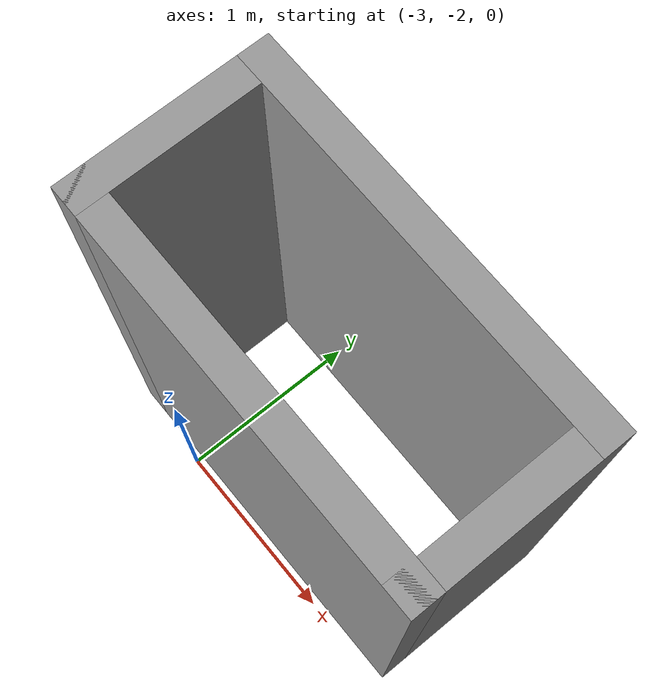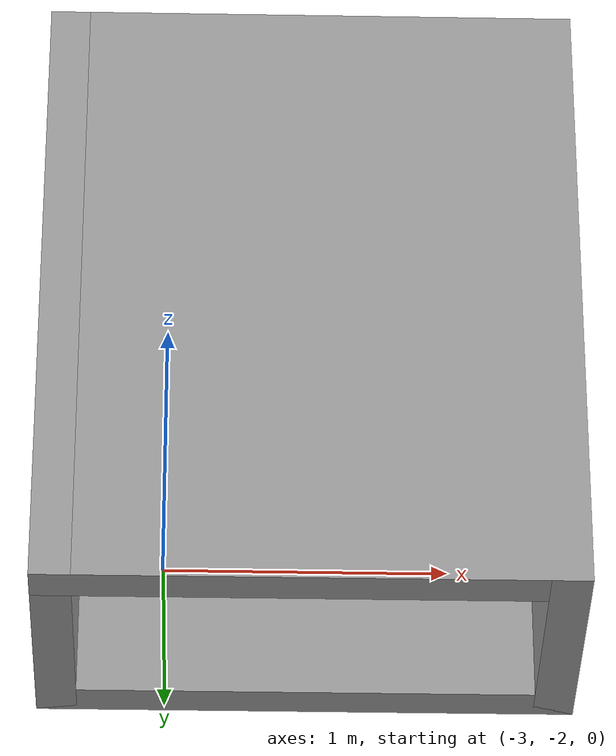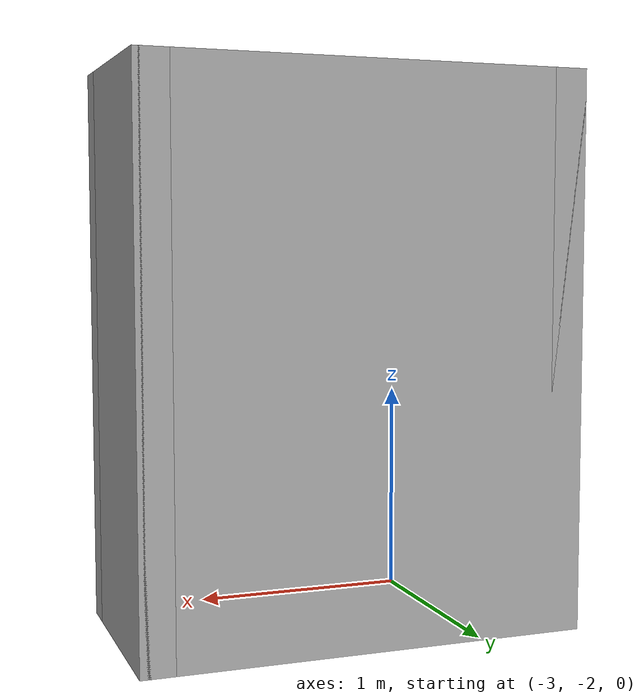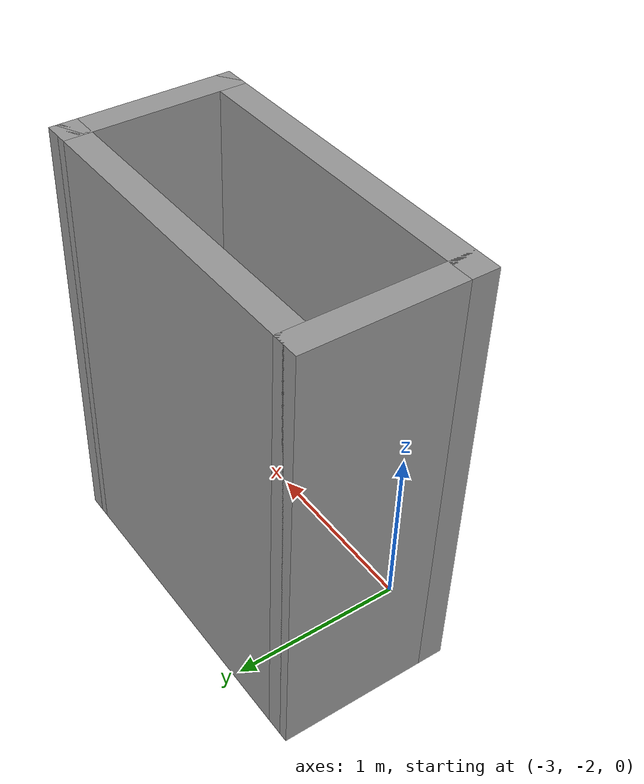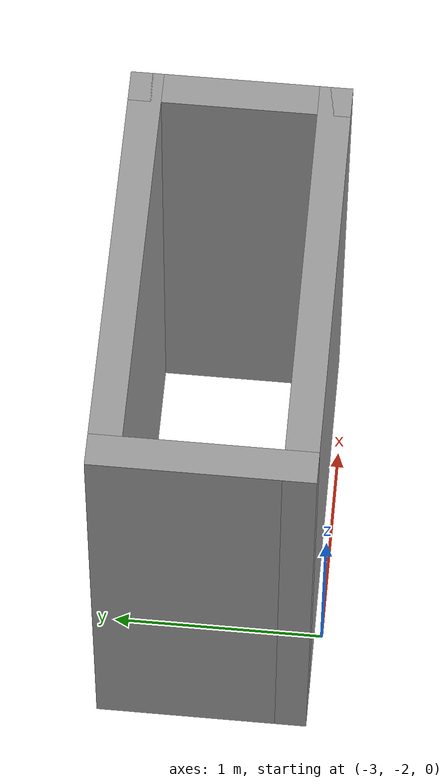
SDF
<?xml version='1.0'?>
<sdf version='1.7'>
  <model name='test'>
    <pose>-1.73833 -0.981114 0 0 -0 0</pose>
    <link name='Wall_2'>
      <collision name='Wall_2_Collision'>
        <geometry>
          <box>
            <size>2 0.15 2.5</size>
          </box>
        </geometry>
        <pose>0 0 1.25 0 -0 0</pose>
      </collision>
      <visual name='Wall_2_Visual'>
        <pose>0 0 1.25 0 -0 0</pose>
        <geometry>
          <box>
            <size>2 0.15 2.5</size>
          </box>
        </geometry>
        <material>
          <script>
            <uri>file://media/materials/scripts/gazebo.material</uri>
            <name>Gazebo/Grey</name>
          </script>
          <ambient>1 1 1 1</ambient>
        </material>
        <meta>
          <layer>0</layer>
        </meta>
      </visual>
      <pose>-0.73833 -0.056114 0 0 -0 0</pose>
    </link>
    <link name='Wall_3'>
      <collision name='Wall_3_Collision'>
        <geometry>
          <box>
            <size>1 0.15 2.5</size>
          </box>
        </geometry>
        <pose>0 0 1.25 0 -0 0</pose>
      </collision>
      <visual name='Wall_3_Visual'>
        <pose>0 0 1.25 0 -0 0</pose>
        <geometry>
          <box>
            <size>1 0.15 2.5</size>
          </box>
        </geometry>
        <material>
          <script>
            <uri>file://media/materials/scripts/gazebo.material</uri>
            <name>Gazebo/Grey</name>
          </script>
          <ambient>1 1 1 1</ambient>
        </material>
        <meta>
          <layer>0</layer>
        </meta>
      </visual>
      <pose>0.18667 -0.481114 0 0 -0 -1.5708</pose>
    </link>
    <link name='Wall_4'>
      <collision name='Wall_4_Collision'>
        <geometry>
          <box>
            <size>2 0.15 2.5</size>
          </box>
        </geometry>
        <pose>0 0 1.25 0 -0 0</pose>
      </collision>
      <visual name='Wall_4_Visual'>
        <pose>0 0 1.25 0 -0 0</pose>
        <geometry>
          <box>
            <size>2 0.15 2.5</size>
          </box>
        </geometry>
        <material>
          <script>
            <uri>file://media/materials/scripts/gazebo.material</uri>
            <name>Gazebo/Grey</name>
          </script>
          <ambient>1 1 1 1</ambient>
        </material>
        <meta>
          <layer>0</layer>
        </meta>
      </visual>
      <pose>-0.73833 -0.906114 0 0 -0 3.14159</pose>
    </link>
    <link name='Wall_5'>
      <collision name='Wall_5_Collision'>
        <geometry>
          <box>
            <size>1 0.15 2.5</size>
          </box>
        </geometry>
        <pose>0 0 1.25 0 -0 0</pose>
      </collision>
      <visual name='Wall_5_Visual'>
        <pose>0 0 1.25 0 -0 0</pose>
        <geometry>
          <box>
            <size>1 0.15 2.5</size>
          </box>
        </geometry>
        <material>
          <script>
            <uri>file://media/materials/scripts/gazebo.material</uri>
            <name>Gazebo/Grey</name>
          </script>
          <ambient>1 1 1 1</ambient>
        </material>
        <meta>
          <layer>0</layer>
        </meta>
      </visual>
      <pose>-1.66333 -0.481114 0 0 -0 1.5708</pose>
    </link>
    <static>1</static>
  </model>
</sdf>
